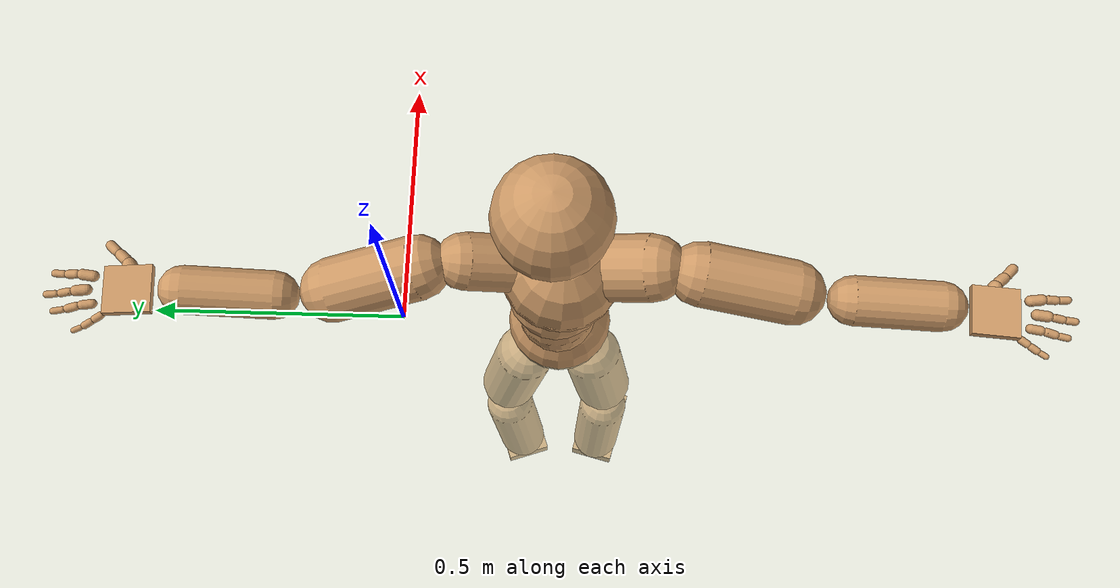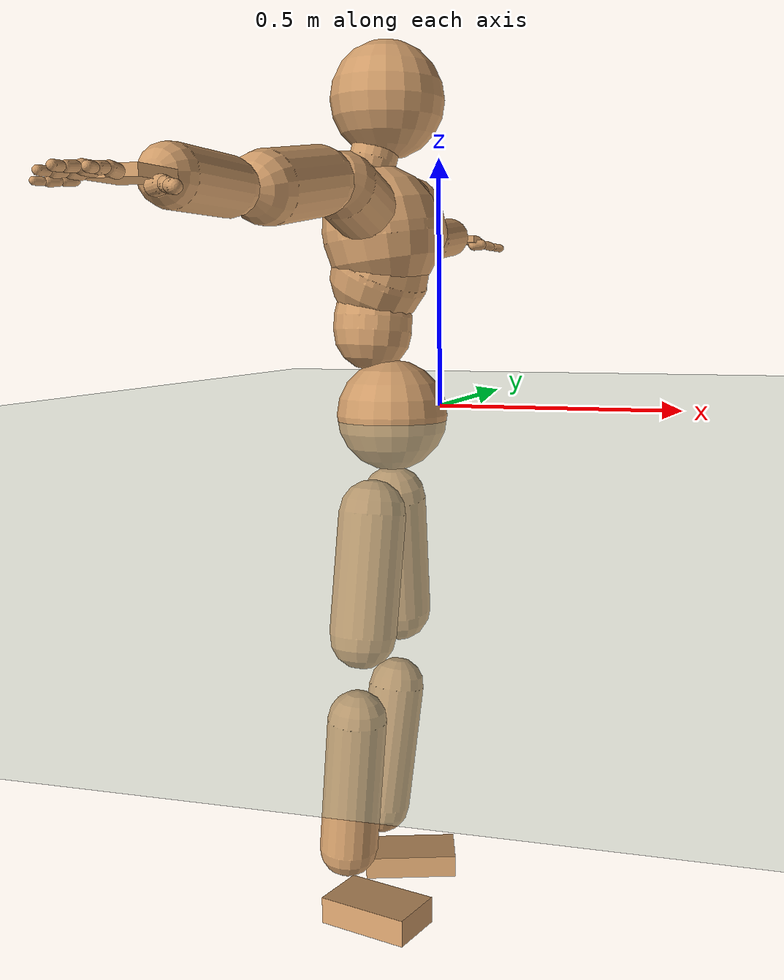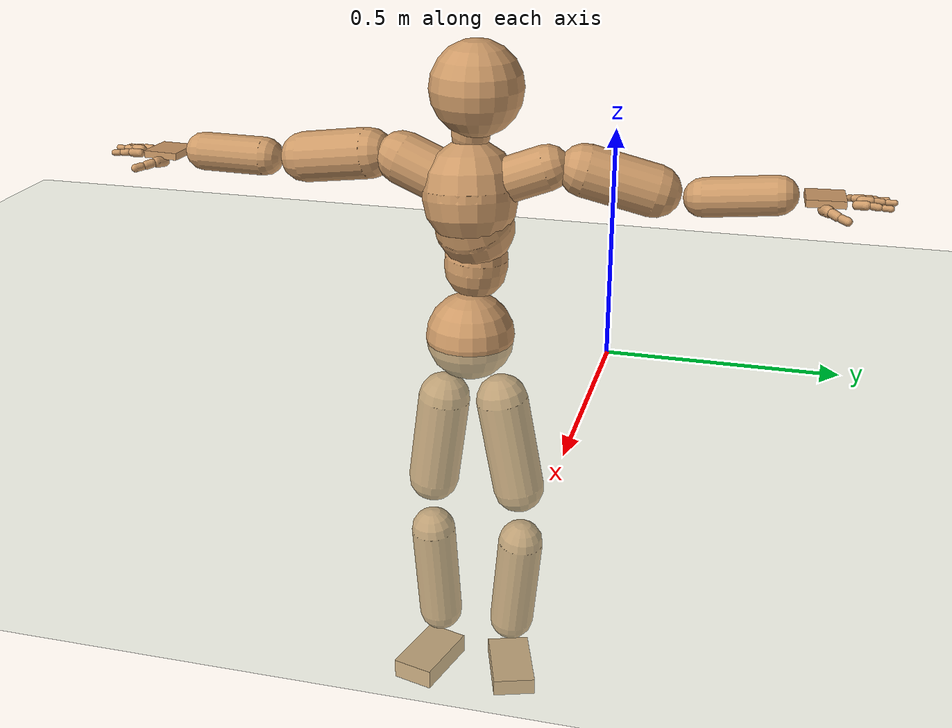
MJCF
<mujoco model="humanoid">
  <compiler coordinate="local" angle="radian"/>
  <default>
    <joint damping="0.0" armature="0.01" stiffness="0.0" limited="true"/>
    <geom conaffinity="1" condim="3" contype="7" margin="0.001" rgba="0.8 0.6 .4 1"/>
  </default>
  <asset>
    <texture type="skybox" builtin="gradient" rgb1=".4 .5 .6" rgb2="0 0 0" width="100" height="100"/>
    <texture builtin="flat" height="1278" mark="cross" markrgb="1 1 1" name="texgeom" random="0.01" rgb1="0.8 0.6 0.4" rgb2="0.8 0.6 0.4" type="cube" width="127"/>
    <texture builtin="checker" height="100" name="texplane" rgb1="0 0 0" rgb2="0.8 0.8 0.8" type="2d" width="100"/>
    <material name="MatPlane" reflectance="0.5" shininess="1" specular="1" texrepeat="60 60" texture="texplane"/>
    <material name="geom" texture="texgeom" texuniform="true"/>
  </asset>
  <worldbody>
    <light cutoff="100" diffuse="1 1 1" dir="-0 0 -1.3" directional="true" exponent="1" pos="0 0 1.3" specular=".1 .1 .1"/>
    <geom conaffinity="1" condim="3" name="floor" pos="0 0 0" rgba="0.8 0.9 0.8 1" size="100 100 .2" type="plane" material="MatPlane"/>
    <body name="Pelvis" pos="0.0013 -0.3128 0.0079">
      <freejoint name="Pelvis"/>
      <geom type="sphere" contype="1" conaffinity="1" density="500" size="0.1012" pos="0.0000 0.0000 0.0000" name="Pelvis"/>
      <body name="L_Hip" pos="-0.021 0.056 -0.0881">
        <joint name="L_Hip_x" type="hinge" pos="0 0 0" axis="1 0 0" stiffness="800" damping="80" armature="0.02" range="-180.0000 180.0000"/>
        <joint name="L_Hip_y" type="hinge" pos="0 0 0" axis="0 1 0" stiffness="800" damping="80" armature="0.02" range="-180.0000 180.0000"/>
        <joint name="L_Hip_z" type="hinge" pos="0 0 0" axis="0 0 1" stiffness="800" damping="80" armature="0.02" range="-180.0000 180.0000"/>
        <geom type="capsule" contype="1" conaffinity="1" density="500" fromto="-0.0015 0.0138 -0.0769 -0.0062 0.0551 -0.3075" size="0.0609" name="L_Hip"/>
        <body name="L_Knee" pos="-0.0077 0.0688 -0.3844">
          <joint name="L_Knee_x" type="hinge" pos="0 0 0" axis="1 0 0" stiffness="800" damping="80" armature="0.02" range="-180.0000 180.0000"/>
          <joint name="L_Knee_y" type="hinge" pos="0 0 0" axis="0 1 0" stiffness="800" damping="80" armature="0.02" range="-180.0000 180.0000"/>
          <joint name="L_Knee_z" type="hinge" pos="0 0 0" axis="0 0 1" stiffness="800" damping="80" armature="0.02" range="-180.0000 180.0000"/>
          <geom type="capsule" contype="1" conaffinity="1" density="500" fromto="-0.0080 -0.0087 -0.0818 -0.0321 -0.0348 -0.3274" size="0.0545" name="L_Knee"/>
          <body name="L_Ankle" pos="-0.0401 -0.0434 -0.4092">
            <joint name="L_Ankle_x" type="hinge" pos="0 0 0" axis="1 0 0" stiffness="800" damping="80" armature="0.02" range="-180.0000 180.0000"/>
            <joint name="L_Ankle_y" type="hinge" pos="0 0 0" axis="0 1 0" stiffness="800" damping="80" armature="0.02" range="-180.0000 180.0000"/>
            <joint name="L_Ankle_z" type="hinge" pos="0 0 0" axis="0 0 1" stiffness="800" damping="80" armature="0.02" range="-180.0000 180.0000"/>
            <geom type="box" contype="1" conaffinity="1" density="500" pos="0.0637 0.0213 -0.0289" size="0.0886 0.0512 0.0208" quat="0.9870 0.0000 0.0000 0.1607" name="L_Ankle"/>
            <body name="L_Toe" pos="0.1274 0.0426 -0.0577">
              <joint name="L_Toe_x" type="hinge" pos="0 0 0" axis="1 0 0" stiffness="500" damping="50" armature="0.02" range="-180.0000 180.0000"/>
              <joint name="L_Toe_y" type="hinge" pos="0 0 0" axis="0 1 0" stiffness="500" damping="50" armature="0.02" range="-180.0000 180.0000"/>
              <joint name="L_Toe_z" type="hinge" pos="0 0 0" axis="0 0 1" stiffness="500" damping="50" armature="0.02" range="-180.0000 180.0000"/>
              <geom type="box" contype="1" conaffinity="1" density="500" pos="0.0000 0.0000 0.0295" size="0.001 0.0025 0.0011" quat="0.9863 0.0000 0.0000 0.1652" name="L_Toe"/>
            </body>
          </body>
        </body>
      </body>
      <body name="R_Hip" pos="-0.0132 -0.0579 -0.0984">
        <joint name="R_Hip_x" type="hinge" pos="0 0 0" axis="1 0 0" stiffness="800" damping="80" armature="0.02" range="-180.0000 180.0000"/>
        <joint name="R_Hip_y" type="hinge" pos="0 0 0" axis="0 1 0" stiffness="800" damping="80" armature="0.02" range="-180.0000 180.0000"/>
        <joint name="R_Hip_z" type="hinge" pos="0 0 0" axis="0 0 1" stiffness="800" damping="80" armature="0.02" range="-180.0000 180.0000"/>
        <geom type="capsule" contype="1" conaffinity="1" density="500" fromto="-0.0032 -0.0105 -0.0736 -0.0129 -0.0419 -0.2946" size="0.0608" name="R_Hip"/>
        <body name="R_Knee" pos="-0.0161 -0.0524 -0.3682">
          <joint name="R_Knee_x" type="hinge" pos="0 0 0" axis="1 0 0" stiffness="800" damping="80" armature="0.02" range="-180.0000 180.0000"/>
          <joint name="R_Knee_y" type="hinge" pos="0 0 0" axis="0 1 0" stiffness="800" damping="80" armature="0.02" range="-180.0000 180.0000"/>
          <joint name="R_Knee_z" type="hinge" pos="0 0 0" axis="0 0 1" stiffness="800" damping="80" armature="0.02" range="-180.0000 180.0000"/>
          <geom type="capsule" contype="1" conaffinity="1" density="500" fromto="-0.0079 0.0031 -0.0844 -0.0317 0.0125 -0.3377" size="0.0544" name="R_Knee"/>
          <body name="R_Ankle" pos="-0.0396 0.0157 -0.4221">
            <joint name="R_Ankle_x" type="hinge" pos="0 0 0" axis="1 0 0" stiffness="800" damping="80" armature="0.02" range="-180.0000 180.0000"/>
            <joint name="R_Ankle_y" type="hinge" pos="0 0 0" axis="0 1 0" stiffness="800" damping="80" armature="0.02" range="-180.0000 180.0000"/>
            <joint name="R_Ankle_z" type="hinge" pos="0 0 0" axis="0 0 1" stiffness="800" damping="80" armature="0.02" range="-180.0000 180.0000"/>
            <geom type="box" contype="1" conaffinity="1" density="500" pos="0.0671 -0.0173 -0.0283" size="0.0886 0.0512 0.0249" quat="0.9920 0.0000 0.0000 -0.1261" name="R_Ankle"/>
            <body name="R_Toe" pos="0.1342 -0.0347 -0.0567">
              <joint name="R_Toe_x" type="hinge" pos="0 0 0" axis="1 0 0" stiffness="500" damping="50" armature="0.02" range="-180.0000 180.0000"/>
              <joint name="R_Toe_y" type="hinge" pos="0 0 0" axis="0 1 0" stiffness="500" damping="50" armature="0.02" range="-180.0000 180.0000"/>
              <joint name="R_Toe_z" type="hinge" pos="0 0 0" axis="0 0 1" stiffness="500" damping="50" armature="0.02" range="-180.0000 180.0000"/>
              <geom type="box" contype="1" conaffinity="1" density="500" pos="0.0000 0.0000 0.0249" size="0.001 0.0025 0.0011" quat="0.9931 0.0000 0.0000 -0.1174" name="R_Toe"/>
            </body>
          </body>
        </body>
      </body>
      <body name="Torso" pos="-0.0388 -0.0004 0.0996">
        <joint name="Torso_x" type="hinge" pos="0 0 0" axis="1 0 0" stiffness="1000" damping="100" armature="0.02" range="-180.0000 180.0000"/>
        <joint name="Torso_y" type="hinge" pos="0 0 0" axis="0 1 0" stiffness="1000" damping="100" armature="0.02" range="-180.0000 180.0000"/>
        <joint name="Torso_z" type="hinge" pos="0 0 0" axis="0 0 1" stiffness="1000" damping="100" armature="0.02" range="-180.0000 180.0000"/>
        <geom type="capsule" contype="1" conaffinity="1" density="500" fromto="0.0025 0.0057 0.0782 0.0017 0.0038 0.0522" size="0.0717" name="Torso"/>
        <body name="Spine" pos="0.0042 0.0094 0.1304">
          <joint name="Spine_x" type="hinge" pos="0 0 0" axis="1 0 0" stiffness="1000" damping="100" armature="0.02" range="-180.0000 180.0000"/>
          <joint name="Spine_y" type="hinge" pos="0 0 0" axis="0 1 0" stiffness="1000" damping="100" armature="0.02" range="-180.0000 180.0000"/>
          <joint name="Spine_z" type="hinge" pos="0 0 0" axis="0 0 1" stiffness="1000" damping="100" armature="0.02" range="-180.0000 180.0000"/>
          <geom type="capsule" contype="1" conaffinity="1" density="500" fromto="0.0153 -0.0053 0.0314 0.0102 -0.0035 0.0209" size="0.0894" name="Spine"/>
          <body name="Chest" pos="0.0255 -0.0088 0.0523">
            <joint name="Chest_x" type="hinge" pos="0 0 0" axis="1 0 0" stiffness="1000" damping="100" armature="0.02" range="-180.0000 180.0000"/>
            <joint name="Chest_y" type="hinge" pos="0 0 0" axis="0 1 0" stiffness="1000" damping="100" armature="0.02" range="-180.0000 180.0000"/>
            <joint name="Chest_z" type="hinge" pos="0 0 0" axis="0 0 1" stiffness="1000" damping="100" armature="0.02" range="-180.0000 180.0000"/>
            <geom type="capsule" contype="1" conaffinity="1" density="500" fromto="-0.0072 -0.0030 0.0565 -0.0048 -0.0020 0.0377" size="0.107" name="Chest"/>
            <body name="Neck" pos="-0.0259 -0.0105 0.145">
              <joint name="Neck_x" type="hinge" pos="0 0 0" axis="1 0 0" stiffness="500" damping="50" armature="0.02" range="-180.0000 180.0000"/>
              <joint name="Neck_y" type="hinge" pos="0 0 0" axis="0 1 0" stiffness="500" damping="50" armature="0.02" range="-180.0000 180.0000"/>
              <joint name="Neck_z" type="hinge" pos="0 0 0" axis="0 0 1" stiffness="500" damping="50" armature="0.02" range="-180.0000 180.0000"/>
              <geom type="capsule" contype="1" conaffinity="1" density="500" fromto="0.0055 0.0047 0.0264 0.0219 0.0190 0.1055" size="0.0425" name="Neck"/>
              <body name="Head" pos="0.0274 0.0237 0.1319">
                <joint name="Head_x" type="hinge" pos="0 0 0" axis="1 0 0" stiffness="500" damping="50" armature="0.02" range="-180.0000 180.0000"/>
                <joint name="Head_y" type="hinge" pos="0 0 0" axis="0 1 0" stiffness="500" damping="50" armature="0.02" range="-180.0000 180.0000"/>
                <joint name="Head_z" type="hinge" pos="0 0 0" axis="0 0 1" stiffness="500" damping="50" armature="0.02" range="-180.0000 180.0000"/>
                <geom type="sphere" contype="1" conaffinity="1" density="500" size="0.1022" pos="0.0000 0.0000 0.0000" name="Head"/>
              </body>
            </body>
            <body name="L_Thorax" pos="-0.0034 0.0444 0.0685">
              <joint name="L_Thorax_x" type="hinge" pos="0 0 0" axis="1 0 0" stiffness="500" damping="50" armature="0.02" range="-180.0000 180.0000"/>
              <joint name="L_Thorax_y" type="hinge" pos="0 0 0" axis="0 1 0" stiffness="500" damping="50" armature="0.02" range="-180.0000 180.0000"/>
              <joint name="L_Thorax_z" type="hinge" pos="0 0 0" axis="0 0 1" stiffness="500" damping="50" armature="0.02" range="-180.0000 180.0000"/>
              <geom type="capsule" contype="1" conaffinity="1" density="500" fromto="-0.0030 0.0298 0.0109 -0.0121 0.1192 0.0435" size="0.0505" name="L_Thorax"/>
              <body name="L_Shoulder" pos="-0.0151 0.1489 0.0544">
                <joint name="L_Shoulder_x" type="hinge" pos="0 0 0" axis="1 0 0" stiffness="500" damping="50" armature="0.02" range="-180.0000 180.0000"/>
                <joint name="L_Shoulder_y" type="hinge" pos="0 0 0" axis="0 1 0" stiffness="500" damping="50" armature="0.02" range="-180.0000 180.0000"/>
                <joint name="L_Shoulder_z" type="hinge" pos="0 0 0" axis="0 0 1" stiffness="500" damping="50" armature="0.02" range="-180.0000 180.0000"/>
                <geom type="capsule" contype="1" conaffinity="1" density="500" fromto="-0.0098 0.0495 -0.0143 -0.0391 0.1979 -0.0573" size="0.0575" name="L_Shoulder"/>
                <body name="L_Elbow" pos="-0.0488 0.2473 -0.0716">
                  <joint name="L_Elbow_x" type="hinge" pos="0 0 0" axis="1 0 0" stiffness="500" damping="50" armature="0.02" range="-720.0000 720.0000"/>
                  <joint name="L_Elbow_y" type="hinge" pos="0 0 0" axis="0 1 0" stiffness="500" damping="50" armature="0.02" range="-720.0000 720.0000"/>
                  <joint name="L_Elbow_z" type="hinge" pos="0 0 0" axis="0 0 1" stiffness="500" damping="50" armature="0.02" range="-720.0000 720.0000"/>
                  <geom type="capsule" contype="1" conaffinity="1" density="500" fromto="0.0000 0.0520 0.0053 0.0000 0.2082 0.0212" size="0.0426" name="L_Elbow"/>
                  <body name="L_Wrist" pos="0 0.2602 0.0265">
                    <joint name="L_Wrist_x" type="hinge" pos="0 0 0" axis="1 0 0" stiffness="300" damping="30" armature="0.02" range="-180.0000 180.0000"/>
                    <joint name="L_Wrist_y" type="hinge" pos="0 0 0" axis="0 1 0" stiffness="300" damping="30" armature="0.02" range="-180.0000 180.0000"/>
                    <joint name="L_Wrist_z" type="hinge" pos="0 0 0" axis="0 0 1" stiffness="300" damping="30" armature="0.02" range="-180.0000 180.0000"/>
                    <geom type="box" contype="1" conaffinity="1" density="500" pos="-0.0029 0.0427 -0.0057" size="0.0415 0.0427 0.008" quat="0.7304 0.0000 0.0000 -0.6830" name="L_Wrist"/>
                    <body name="L_Index1" pos="0.0205 0.1001 -0.0081">
                      <joint name="L_Index1_x" type="hinge" pos="0 0 0" axis="1 0 0" stiffness="100" damping="10" armature="0.02" range="-180.0000 180.0000"/>
                      <joint name="L_Index1_y" type="hinge" pos="0 0 0" axis="0 1 0" stiffness="100" damping="10" armature="0.02" range="-180.0000 180.0000"/>
                      <joint name="L_Index1_z" type="hinge" pos="0 0 0" axis="0 0 1" stiffness="100" damping="10" armature="0.02" range="-180.0000 180.0000"/>
                      <geom type="capsule" contype="1" conaffinity="1" density="500" fromto="0.0007 0.0064 0.0003 0.0028 0.0257 0.0013" size="0.0096" name="L_Index1"/>
                      <body name="L_Index2" pos="0.0035 0.0322 0.0016">
                        <joint name="L_Index2_x" type="hinge" pos="0 0 0" axis="1 0 0" stiffness="100" damping="10" armature="0.02" range="-180.0000 180.0000"/>
                        <joint name="L_Index2_y" type="hinge" pos="0 0 0" axis="0 1 0" stiffness="100" damping="10" armature="0.02" range="-180.0000 180.0000"/>
                        <joint name="L_Index2_z" type="hinge" pos="0 0 0" axis="0 0 1" stiffness="100" damping="10" armature="0.02" range="-180.0000 180.0000"/>
                        <geom type="capsule" contype="1" conaffinity="1" density="500" fromto="-0.0001 0.0045 -0.0005 -0.0003 0.0182 -0.0021" size="0.0078" name="L_Index2"/>
                        <body name="L_Index3" pos="-0.0003 0.0227 -0.0027">
                          <joint name="L_Index3_x" type="hinge" pos="0 0 0" axis="1 0 0" stiffness="100" damping="10" armature="0.02" range="-180.0000 180.0000"/>
                          <joint name="L_Index3_y" type="hinge" pos="0 0 0" axis="0 1 0" stiffness="100" damping="10" armature="0.02" range="-180.0000 180.0000"/>
                          <joint name="L_Index3_z" type="hinge" pos="0 0 0" axis="0 0 1" stiffness="100" damping="10" armature="0.02" range="-180.0000 180.0000"/>
                          <geom type="capsule" contype="1" conaffinity="1" density="500" fromto="0.0003 0.0049 -0.0001 0.0013 0.0198 -0.0005" size="0.0066" name="L_Index3"/>
                        </body>
                      </body>
                    </body>
                    <body name="L_Middle1" pos="-0.0036 0.1081 -0.0056">
                      <joint name="L_Middle1_x" type="hinge" pos="0 0 0" axis="1 0 0" stiffness="100" damping="10" armature="0.02" range="-180.0000 180.0000"/>
                      <joint name="L_Middle1_y" type="hinge" pos="0 0 0" axis="0 1 0" stiffness="100" damping="10" armature="0.02" range="-180.0000 180.0000"/>
                      <joint name="L_Middle1_z" type="hinge" pos="0 0 0" axis="0 0 1" stiffness="100" damping="10" armature="0.02" range="-180.0000 180.0000"/>
                      <geom type="capsule" contype="1" conaffinity="1" density="500" fromto="-0.0009 0.0062 0.0001 -0.0034 0.0247 0.0004" size="0.0096" name="L_Middle1"/>
                      <body name="L_Middle2" pos="-0.0043 0.0309 0.0005">
                        <joint name="L_Middle2_x" type="hinge" pos="0 0 0" axis="1 0 0" stiffness="100" damping="10" armature="0.02" range="-180.0000 180.0000"/>
                        <joint name="L_Middle2_y" type="hinge" pos="0 0 0" axis="0 1 0" stiffness="100" damping="10" armature="0.02" range="-180.0000 180.0000"/>
                        <joint name="L_Middle2_z" type="hinge" pos="0 0 0" axis="0 0 1" stiffness="100" damping="10" armature="0.02" range="-180.0000 180.0000"/>
                        <geom type="capsule" contype="1" conaffinity="1" density="500" fromto="-0.0009 0.0047 -0.0005 -0.0035 0.0188 -0.0020" size="0.0071" name="L_Middle2"/>
                        <body name="L_Middle3" pos="-0.0043 0.0235 -0.0025">
                          <joint name="L_Middle3_x" type="hinge" pos="0 0 0" axis="1 0 0" stiffness="100" damping="10" armature="0.02" range="-180.0000 180.0000"/>
                          <joint name="L_Middle3_y" type="hinge" pos="0 0 0" axis="0 1 0" stiffness="100" damping="10" armature="0.02" range="-180.0000 180.0000"/>
                          <joint name="L_Middle3_z" type="hinge" pos="0 0 0" axis="0 0 1" stiffness="100" damping="10" armature="0.02" range="-180.0000 180.0000"/>
                          <geom type="capsule" contype="1" conaffinity="1" density="500" fromto="-0.0005 0.0051 -0.0001 -0.0019 0.0204 -0.0004" size="0.0063" name="L_Middle3"/>
                        </body>
                      </body>
                    </body>
                    <body name="L_Pinky1" pos="-0.0447 0.0833 -0.0144">
                      <joint name="L_Pinky1_x" type="hinge" pos="0 0 0" axis="1 0 0" stiffness="100" damping="10" armature="0.02" range="-180.0000 180.0000"/>
                      <joint name="L_Pinky1_y" type="hinge" pos="0 0 0" axis="0 1 0" stiffness="100" damping="10" armature="0.02" range="-180.0000 180.0000"/>
                      <joint name="L_Pinky1_z" type="hinge" pos="0 0 0" axis="0 0 1" stiffness="100" damping="10" armature="0.02" range="-180.0000 180.0000"/>
                      <geom type="capsule" contype="1" conaffinity="1" density="500" fromto="-0.0024 0.0033 -0.0003 -0.0094 0.0133 -0.0013" size="0.0069" name="L_Pinky1"/>
                      <body name="L_Pinky2" pos="-0.0118 0.0166 -0.0017">
                        <joint name="L_Pinky2_x" type="hinge" pos="0 0 0" axis="1 0 0" stiffness="100" damping="10" armature="0.02" range="-180.0000 180.0000"/>
                        <joint name="L_Pinky2_y" type="hinge" pos="0 0 0" axis="0 1 0" stiffness="100" damping="10" armature="0.02" range="-180.0000 180.0000"/>
                        <joint name="L_Pinky2_z" type="hinge" pos="0 0 0" axis="0 0 1" stiffness="100" damping="10" armature="0.02" range="-180.0000 180.0000"/>
                        <geom type="capsule" contype="1" conaffinity="1" density="500" fromto="-0.0022 0.0033 -0.0004 -0.0087 0.0130 -0.0016" size="0.0066" name="L_Pinky2"/>
                        <body name="L_Pinky3" pos="-0.0109 0.0163 -0.002">
                          <joint name="L_Pinky3_x" type="hinge" pos="0 0 0" axis="1 0 0" stiffness="100" damping="10" armature="0.02" range="-180.0000 180.0000"/>
                          <joint name="L_Pinky3_y" type="hinge" pos="0 0 0" axis="0 1 0" stiffness="100" damping="10" armature="0.02" range="-180.0000 180.0000"/>
                          <joint name="L_Pinky3_z" type="hinge" pos="0 0 0" axis="0 0 1" stiffness="100" damping="10" armature="0.02" range="-180.0000 180.0000"/>
                          <geom type="capsule" contype="1" conaffinity="1" density="500" fromto="-0.0018 0.0037 0.0000 -0.0071 0.0146 0.0000" size="0.005" name="L_Pinky3"/>
                        </body>
                      </body>
                    </body>
                    <body name="L_Ring1" pos="-0.0277 0.0964 -0.0089">
                      <joint name="L_Ring1_x" type="hinge" pos="0 0 0" axis="1 0 0" stiffness="100" damping="10" armature="0.02" range="-180.0000 180.0000"/>
                      <joint name="L_Ring1_y" type="hinge" pos="0 0 0" axis="0 1 0" stiffness="100" damping="10" armature="0.02" range="-180.0000 180.0000"/>
                      <joint name="L_Ring1_z" type="hinge" pos="0 0 0" axis="0 0 1" stiffness="100" damping="10" armature="0.02" range="-180.0000 180.0000"/>
                      <geom type="capsule" contype="1" conaffinity="1" density="500" fromto="-0.0010 0.0057 0.0001 -0.0039 0.0229 0.0003" size="0.0082" name="L_Ring1"/>
                      <body name="L_Ring2" pos="-0.0049 0.0286 0.0004">
                        <joint name="L_Ring2_x" type="hinge" pos="0 0 0" axis="1 0 0" stiffness="100" damping="10" armature="0.02" range="-180.0000 180.0000"/>
                        <joint name="L_Ring2_y" type="hinge" pos="0 0 0" axis="0 1 0" stiffness="100" damping="10" armature="0.02" range="-180.0000 180.0000"/>
                        <joint name="L_Ring2_z" type="hinge" pos="0 0 0" axis="0 0 1" stiffness="100" damping="10" armature="0.02" range="-180.0000 180.0000"/>
                        <geom type="capsule" contype="1" conaffinity="1" density="500" fromto="-0.0013 0.0046 -0.0005 -0.0053 0.0186 -0.0019" size="0.0076" name="L_Ring2"/>
                        <body name="L_Ring3" pos="-0.0066 0.0232 -0.0024">
                          <joint name="L_Ring3_x" type="hinge" pos="0 0 0" axis="1 0 0" stiffness="100" damping="10" armature="0.02" range="-180.0000 180.0000"/>
                          <joint name="L_Ring3_y" type="hinge" pos="0 0 0" axis="0 1 0" stiffness="100" damping="10" armature="0.02" range="-180.0000 180.0000"/>
                          <joint name="L_Ring3_z" type="hinge" pos="0 0 0" axis="0 0 1" stiffness="100" damping="10" armature="0.02" range="-180.0000 180.0000"/>
                          <geom type="capsule" contype="1" conaffinity="1" density="500" fromto="-0.0009 0.0050 -0.0001 -0.0037 0.0202 -0.0003" size="0.0059" name="L_Ring3"/>
                        </body>
                      </body>
                    </body>
                    <body name="L_Thumb1" pos="0.0269 0.0387 -0.0196">
                      <joint name="L_Thumb1_x" type="hinge" pos="0 0 0" axis="1 0 0" stiffness="100" damping="10" armature="0.02" range="-180.0000 180.0000"/>
                      <joint name="L_Thumb1_y" type="hinge" pos="0 0 0" axis="0 1 0" stiffness="100" damping="10" armature="0.02" range="-180.0000 180.0000"/>
                      <joint name="L_Thumb1_z" type="hinge" pos="0 0 0" axis="0 0 1" stiffness="100" damping="10" armature="0.02" range="-180.0000 180.0000"/>
                      <geom type="capsule" contype="1" conaffinity="1" density="500" fromto="0.0053 0.0032 0.0004 0.0212 0.0128 0.0017" size="0.0125" name="L_Thumb1"/>
                      <body name="L_Thumb2" pos="0.0265 0.0159 0.0021">
                        <joint name="L_Thumb2_x" type="hinge" pos="0 0 0" axis="1 0 0" stiffness="100" damping="10" armature="0.02" range="-180.0000 180.0000"/>
                        <joint name="L_Thumb2_y" type="hinge" pos="0 0 0" axis="0 1 0" stiffness="100" damping="10" armature="0.02" range="-180.0000 180.0000"/>
                        <joint name="L_Thumb2_z" type="hinge" pos="0 0 0" axis="0 0 1" stiffness="100" damping="10" armature="0.02" range="-180.0000 180.0000"/>
                        <geom type="capsule" contype="1" conaffinity="1" density="500" fromto="0.0033 0.0039 -0.0010 0.0133 0.0155 -0.0040" size="0.01" name="L_Thumb2"/>
                        <body name="L_Thumb3" pos="0.0166 0.0194 -0.005">
                          <joint name="L_Thumb3_x" type="hinge" pos="0 0 0" axis="1 0 0" stiffness="100" damping="10" armature="0.02" range="-180.0000 180.0000"/>
                          <joint name="L_Thumb3_y" type="hinge" pos="0 0 0" axis="0 1 0" stiffness="100" damping="10" armature="0.02" range="-180.0000 180.0000"/>
                          <joint name="L_Thumb3_z" type="hinge" pos="0 0 0" axis="0 0 1" stiffness="100" damping="10" armature="0.02" range="-180.0000 180.0000"/>
                          <geom type="capsule" contype="1" conaffinity="1" density="500" fromto="0.0037 0.0043 -0.0006 0.0149 0.0171 -0.0024" size="0.009" name="L_Thumb3"/>
                        </body>
                      </body>
                    </body>
                  </body>
                </body>
              </body>
            </body>
            <body name="R_Thorax" pos="-0.0067 -0.0488 0.0691">
              <joint name="R_Thorax_x" type="hinge" pos="0 0 0" axis="1 0 0" stiffness="500" damping="50" armature="0.02" range="-180.0000 180.0000"/>
              <joint name="R_Thorax_y" type="hinge" pos="0 0 0" axis="0 1 0" stiffness="500" damping="50" armature="0.02" range="-180.0000 180.0000"/>
              <joint name="R_Thorax_z" type="hinge" pos="0 0 0" axis="0 0 1" stiffness="500" damping="50" armature="0.02" range="-180.0000 180.0000"/>
              <geom type="capsule" contype="1" conaffinity="1" density="500" fromto="-0.0030 -0.0275 0.0106 -0.0118 -0.1102 0.0423" size="0.0592" name="R_Thorax"/>
              <body name="R_Shoulder" pos="-0.0148 -0.1377 0.0529">
                <joint name="R_Shoulder_x" type="hinge" pos="0 0 0" axis="1 0 0" stiffness="500" damping="50" armature="0.02" range="-180.0000 180.0000"/>
                <joint name="R_Shoulder_y" type="hinge" pos="0 0 0" axis="0 1 0" stiffness="500" damping="50" armature="0.02" range="-180.0000 180.0000"/>
                <joint name="R_Shoulder_z" type="hinge" pos="0 0 0" axis="0 0 1" stiffness="500" damping="50" armature="0.02" range="-180.0000 180.0000"/>
                <geom type="capsule" contype="1" conaffinity="1" density="500" fromto="-0.0067 -0.0530 -0.0082 -0.0269 -0.2118 -0.0329" size="0.0568" name="R_Shoulder"/>
                <body name="R_Elbow" pos="-0.0336 -0.2648 -0.0411">
                  <joint name="R_Elbow_x" type="hinge" pos="0 0 0" axis="1 0 0" stiffness="500" damping="50" armature="0.02" range="-720.0000 720.0000"/>
                  <joint name="R_Elbow_y" type="hinge" pos="0 0 0" axis="0 1 0" stiffness="500" damping="50" armature="0.02" range="-720.0000 720.0000"/>
                  <joint name="R_Elbow_z" type="hinge" pos="0 0 0" axis="0 0 1" stiffness="500" damping="50" armature="0.02" range="-720.0000 720.0000"/>
                  <geom type="capsule" contype="1" conaffinity="1" density="500" fromto="-0.0022 -0.0506 0.0001 -0.0090 -0.2024 0.0004" size="0.0436" name="R_Elbow"/>
                  <body name="R_Wrist" pos="-0.0112 -0.253 0.0005">
                    <joint name="R_Wrist_x" type="hinge" pos="0 0 0" axis="1 0 0" stiffness="300" damping="30" armature="0.02" range="-180.0000 180.0000"/>
                    <joint name="R_Wrist_y" type="hinge" pos="0 0 0" axis="0 1 0" stiffness="300" damping="30" armature="0.02" range="-180.0000 180.0000"/>
                    <joint name="R_Wrist_z" type="hinge" pos="0 0 0" axis="0 0 1" stiffness="300" damping="30" armature="0.02" range="-180.0000 180.0000"/>
                    <geom type="box" contype="1" conaffinity="1" density="500" pos="-0.0034 -0.0425 -0.0074" size="0.0415 0.0438 0.0081" quat="0.7345 0.0000 0.0000 0.6786" name="R_Wrist"/>
                    <body name="R_Index1" pos="0.0195 -0.0997 -0.0116">
                      <joint name="R_Index1_x" type="hinge" pos="0 0 0" axis="1 0 0" stiffness="100" damping="10" armature="0.02" range="-180.0000 180.0000"/>
                      <joint name="R_Index1_y" type="hinge" pos="0 0 0" axis="0 1 0" stiffness="100" damping="10" armature="0.02" range="-180.0000 180.0000"/>
                      <joint name="R_Index1_z" type="hinge" pos="0 0 0" axis="0 0 1" stiffness="100" damping="10" armature="0.02" range="-180.0000 180.0000"/>
                      <geom type="capsule" contype="1" conaffinity="1" density="500" fromto="0.0007 -0.0064 0.0003 0.0028 -0.0257 0.0013" size="0.0096" name="R_Index1"/>
                      <body name="R_Index2" pos="0.0035 -0.0322 0.0016">
                        <joint name="R_Index2_x" type="hinge" pos="0 0 0" axis="1 0 0" stiffness="100" damping="10" armature="0.02" range="-180.0000 180.0000"/>
                        <joint name="R_Index2_y" type="hinge" pos="0 0 0" axis="0 1 0" stiffness="100" damping="10" armature="0.02" range="-180.0000 180.0000"/>
                        <joint name="R_Index2_z" type="hinge" pos="0 0 0" axis="0 0 1" stiffness="100" damping="10" armature="0.02" range="-180.0000 180.0000"/>
                        <geom type="capsule" contype="1" conaffinity="1" density="500" fromto="-0.0001 -0.0045 -0.0005 -0.0003 -0.0182 -0.0021" size="0.0078" name="R_Index2"/>
                        <body name="R_Index3" pos="-0.0003 -0.0227 -0.0027">
                          <joint name="R_Index3_x" type="hinge" pos="0 0 0" axis="1 0 0" stiffness="100" damping="10" armature="0.02" range="-180.0000 180.0000"/>
                          <joint name="R_Index3_y" type="hinge" pos="0 0 0" axis="0 1 0" stiffness="100" damping="10" armature="0.02" range="-180.0000 180.0000"/>
                          <joint name="R_Index3_z" type="hinge" pos="0 0 0" axis="0 0 1" stiffness="100" damping="10" armature="0.02" range="-180.0000 180.0000"/>
                          <geom type="capsule" contype="1" conaffinity="1" density="500" fromto="0.0003 -0.0041 -0.0001 0.0013 -0.0166 -0.0005" size="0.0069" name="R_Index3"/>
                        </body>
                      </body>
                    </body>
                    <body name="R_Middle1" pos="-0.0046 -0.1077 -0.0091">
                      <joint name="R_Middle1_x" type="hinge" pos="0 0 0" axis="1 0 0" stiffness="100" damping="10" armature="0.02" range="-180.0000 180.0000"/>
                      <joint name="R_Middle1_y" type="hinge" pos="0 0 0" axis="0 1 0" stiffness="100" damping="10" armature="0.02" range="-180.0000 180.0000"/>
                      <joint name="R_Middle1_z" type="hinge" pos="0 0 0" axis="0 0 1" stiffness="100" damping="10" armature="0.02" range="-180.0000 180.0000"/>
                      <geom type="capsule" contype="1" conaffinity="1" density="500" fromto="-0.0009 -0.0062 0.0001 -0.0034 -0.0247 0.0004" size="0.0096" name="R_Middle1"/>
                      <body name="R_Middle2" pos="-0.0043 -0.0309 0.0005">
                        <joint name="R_Middle2_x" type="hinge" pos="0 0 0" axis="1 0 0" stiffness="100" damping="10" armature="0.02" range="-180.0000 180.0000"/>
                        <joint name="R_Middle2_y" type="hinge" pos="0 0 0" axis="0 1 0" stiffness="100" damping="10" armature="0.02" range="-180.0000 180.0000"/>
                        <joint name="R_Middle2_z" type="hinge" pos="0 0 0" axis="0 0 1" stiffness="100" damping="10" armature="0.02" range="-180.0000 180.0000"/>
                        <geom type="capsule" contype="1" conaffinity="1" density="500" fromto="-0.0009 -0.0047 -0.0005 -0.0035 -0.0188 -0.0020" size="0.0072" name="R_Middle2"/>
                        <body name="R_Middle3" pos="-0.0043 -0.0235 -0.0025">
                          <joint name="R_Middle3_x" type="hinge" pos="0 0 0" axis="1 0 0" stiffness="100" damping="10" armature="0.02" range="-180.0000 180.0000"/>
                          <joint name="R_Middle3_y" type="hinge" pos="0 0 0" axis="0 1 0" stiffness="100" damping="10" armature="0.02" range="-180.0000 180.0000"/>
                          <joint name="R_Middle3_z" type="hinge" pos="0 0 0" axis="0 0 1" stiffness="100" damping="10" armature="0.02" range="-180.0000 180.0000"/>
                          <geom type="capsule" contype="1" conaffinity="1" density="500" fromto="-0.0005 -0.0043 -0.0001 -0.0019 -0.0172 -0.0004" size="0.0066" name="R_Middle3"/>
                        </body>
                      </body>
                    </body>
                    <body name="R_Pinky1" pos="-0.0457 -0.0829 -0.018">
                      <joint name="R_Pinky1_x" type="hinge" pos="0 0 0" axis="1 0 0" stiffness="100" damping="10" armature="0.02" range="-180.0000 180.0000"/>
                      <joint name="R_Pinky1_y" type="hinge" pos="0 0 0" axis="0 1 0" stiffness="100" damping="10" armature="0.02" range="-180.0000 180.0000"/>
                      <joint name="R_Pinky1_z" type="hinge" pos="0 0 0" axis="0 0 1" stiffness="100" damping="10" armature="0.02" range="-180.0000 180.0000"/>
                      <geom type="capsule" contype="1" conaffinity="1" density="500" fromto="-0.0024 -0.0033 -0.0003 -0.0094 -0.0133 -0.0013" size="0.0069" name="R_Pinky1"/>
                      <body name="R_Pinky2" pos="-0.0118 -0.0166 -0.0017">
                        <joint name="R_Pinky2_x" type="hinge" pos="0 0 0" axis="1 0 0" stiffness="100" damping="10" armature="0.02" range="-180.0000 180.0000"/>
                        <joint name="R_Pinky2_y" type="hinge" pos="0 0 0" axis="0 1 0" stiffness="100" damping="10" armature="0.02" range="-180.0000 180.0000"/>
                        <joint name="R_Pinky2_z" type="hinge" pos="0 0 0" axis="0 0 1" stiffness="100" damping="10" armature="0.02" range="-180.0000 180.0000"/>
                        <geom type="capsule" contype="1" conaffinity="1" density="500" fromto="-0.0022 -0.0033 -0.0004 -0.0087 -0.0130 -0.0016" size="0.0066" name="R_Pinky2"/>
                        <body name="R_Pinky3" pos="-0.0109 -0.0163 -0.002">
                          <joint name="R_Pinky3_x" type="hinge" pos="0 0 0" axis="1 0 0" stiffness="100" damping="10" armature="0.02" range="-180.0000 180.0000"/>
                          <joint name="R_Pinky3_y" type="hinge" pos="0 0 0" axis="0 1 0" stiffness="100" damping="10" armature="0.02" range="-180.0000 180.0000"/>
                          <joint name="R_Pinky3_z" type="hinge" pos="0 0 0" axis="0 0 1" stiffness="100" damping="10" armature="0.02" range="-180.0000 180.0000"/>
                          <geom type="capsule" contype="1" conaffinity="1" density="500" fromto="-0.0018 -0.0029 0.0000 -0.0071 -0.0114 0.0000" size="0.0053" name="R_Pinky3"/>
                        </body>
                      </body>
                    </body>
                    <body name="R_Ring1" pos="-0.0287 -0.096 -0.0124">
                      <joint name="R_Ring1_x" type="hinge" pos="0 0 0" axis="1 0 0" stiffness="100" damping="10" armature="0.02" range="-180.0000 180.0000"/>
                      <joint name="R_Ring1_y" type="hinge" pos="0 0 0" axis="0 1 0" stiffness="100" damping="10" armature="0.02" range="-180.0000 180.0000"/>
                      <joint name="R_Ring1_z" type="hinge" pos="0 0 0" axis="0 0 1" stiffness="100" damping="10" armature="0.02" range="-180.0000 180.0000"/>
                      <geom type="capsule" contype="1" conaffinity="1" density="500" fromto="-0.0010 -0.0057 0.0001 -0.0039 -0.0229 0.0003" size="0.0082" name="R_Ring1"/>
                      <body name="R_Ring2" pos="-0.0049 -0.0286 0.0004">
                        <joint name="R_Ring2_x" type="hinge" pos="0 0 0" axis="1 0 0" stiffness="100" damping="10" armature="0.02" range="-180.0000 180.0000"/>
                        <joint name="R_Ring2_y" type="hinge" pos="0 0 0" axis="0 1 0" stiffness="100" damping="10" armature="0.02" range="-180.0000 180.0000"/>
                        <joint name="R_Ring2_z" type="hinge" pos="0 0 0" axis="0 0 1" stiffness="100" damping="10" armature="0.02" range="-180.0000 180.0000"/>
                        <geom type="capsule" contype="1" conaffinity="1" density="500" fromto="-0.0013 -0.0046 -0.0005 -0.0053 -0.0186 -0.0019" size="0.0076" name="R_Ring2"/>
                        <body name="R_Ring3" pos="-0.0066 -0.0232 -0.0024">
                          <joint name="R_Ring3_x" type="hinge" pos="0 0 0" axis="1 0 0" stiffness="100" damping="10" armature="0.02" range="-180.0000 180.0000"/>
                          <joint name="R_Ring3_y" type="hinge" pos="0 0 0" axis="0 1 0" stiffness="100" damping="10" armature="0.02" range="-180.0000 180.0000"/>
                          <joint name="R_Ring3_z" type="hinge" pos="0 0 0" axis="0 0 1" stiffness="100" damping="10" armature="0.02" range="-180.0000 180.0000"/>
                          <geom type="capsule" contype="1" conaffinity="1" density="500" fromto="-0.0009 -0.0042 -0.0001 -0.0037 -0.0170 -0.0003" size="0.0062" name="R_Ring3"/>
                        </body>
                      </body>
                    </body>
                    <body name="R_Thumb1" pos="0.0259 -0.0383 -0.0232">
                      <joint name="R_Thumb1_x" type="hinge" pos="0 0 0" axis="1 0 0" stiffness="100" damping="10" armature="0.02" range="-180.0000 180.0000"/>
                      <joint name="R_Thumb1_y" type="hinge" pos="0 0 0" axis="0 1 0" stiffness="100" damping="10" armature="0.02" range="-180.0000 180.0000"/>
                      <joint name="R_Thumb1_z" type="hinge" pos="0 0 0" axis="0 0 1" stiffness="100" damping="10" armature="0.02" range="-180.0000 180.0000"/>
                      <geom type="capsule" contype="1" conaffinity="1" density="500" fromto="0.0053 -0.0032 0.0004 0.0212 -0.0128 0.0017" size="0.0125" name="R_Thumb1"/>
                      <body name="R_Thumb2" pos="0.0265 -0.0159 0.0021">
                        <joint name="R_Thumb2_x" type="hinge" pos="0 0 0" axis="1 0 0" stiffness="100" damping="10" armature="0.02" range="-180.0000 180.0000"/>
                        <joint name="R_Thumb2_y" type="hinge" pos="0 0 0" axis="0 1 0" stiffness="100" damping="10" armature="0.02" range="-180.0000 180.0000"/>
                        <joint name="R_Thumb2_z" type="hinge" pos="0 0 0" axis="0 0 1" stiffness="100" damping="10" armature="0.02" range="-180.0000 180.0000"/>
                        <geom type="capsule" contype="1" conaffinity="1" density="500" fromto="0.0033 -0.0039 -0.0010 0.0133 -0.0155 -0.0040" size="0.01" name="R_Thumb2"/>
                        <body name="R_Thumb3" pos="0.0166 -0.0194 -0.005">
                          <joint name="R_Thumb3_x" type="hinge" pos="0 0 0" axis="1 0 0" stiffness="100" damping="10" armature="0.02" range="-180.0000 180.0000"/>
                          <joint name="R_Thumb3_y" type="hinge" pos="0 0 0" axis="0 1 0" stiffness="100" damping="10" armature="0.02" range="-180.0000 180.0000"/>
                          <joint name="R_Thumb3_z" type="hinge" pos="0 0 0" axis="0 0 1" stiffness="100" damping="10" armature="0.02" range="-180.0000 180.0000"/>
                          <geom type="capsule" contype="1" conaffinity="1" density="500" fromto="0.0037 -0.0035 -0.0006 0.0149 -0.0139 -0.0024" size="0.0093" name="R_Thumb3"/>
                        </body>
                      </body>
                    </body>
                  </body>
                </body>
              </body>
            </body>
          </body>
        </body>
      </body>
    </body>
  </worldbody>
  <actuator>
    <motor name="L_Hip_x" joint="L_Hip_x" gear="500"/>
    <motor name="L_Hip_y" joint="L_Hip_y" gear="500"/>
    <motor name="L_Hip_z" joint="L_Hip_z" gear="500"/>
    <motor name="L_Knee_x" joint="L_Knee_x" gear="500"/>
    <motor name="L_Knee_y" joint="L_Knee_y" gear="500"/>
    <motor name="L_Knee_z" joint="L_Knee_z" gear="500"/>
    <motor name="L_Ankle_x" joint="L_Ankle_x" gear="500"/>
    <motor name="L_Ankle_y" joint="L_Ankle_y" gear="500"/>
    <motor name="L_Ankle_z" joint="L_Ankle_z" gear="500"/>
    <motor name="L_Toe_x" joint="L_Toe_x" gear="500"/>
    <motor name="L_Toe_y" joint="L_Toe_y" gear="500"/>
    <motor name="L_Toe_z" joint="L_Toe_z" gear="500"/>
    <motor name="R_Hip_x" joint="R_Hip_x" gear="500"/>
    <motor name="R_Hip_y" joint="R_Hip_y" gear="500"/>
    <motor name="R_Hip_z" joint="R_Hip_z" gear="500"/>
    <motor name="R_Knee_x" joint="R_Knee_x" gear="500"/>
    <motor name="R_Knee_y" joint="R_Knee_y" gear="500"/>
    <motor name="R_Knee_z" joint="R_Knee_z" gear="500"/>
    <motor name="R_Ankle_x" joint="R_Ankle_x" gear="500"/>
    <motor name="R_Ankle_y" joint="R_Ankle_y" gear="500"/>
    <motor name="R_Ankle_z" joint="R_Ankle_z" gear="500"/>
    <motor name="R_Toe_x" joint="R_Toe_x" gear="500"/>
    <motor name="R_Toe_y" joint="R_Toe_y" gear="500"/>
    <motor name="R_Toe_z" joint="R_Toe_z" gear="500"/>
    <motor name="Torso_x" joint="Torso_x" gear="500"/>
    <motor name="Torso_y" joint="Torso_y" gear="500"/>
    <motor name="Torso_z" joint="Torso_z" gear="500"/>
    <motor name="Spine_x" joint="Spine_x" gear="500"/>
    <motor name="Spine_y" joint="Spine_y" gear="500"/>
    <motor name="Spine_z" joint="Spine_z" gear="500"/>
    <motor name="Chest_x" joint="Chest_x" gear="500"/>
    <motor name="Chest_y" joint="Chest_y" gear="500"/>
    <motor name="Chest_z" joint="Chest_z" gear="500"/>
    <motor name="Neck_x" joint="Neck_x" gear="500"/>
    <motor name="Neck_y" joint="Neck_y" gear="500"/>
    <motor name="Neck_z" joint="Neck_z" gear="500"/>
    <motor name="Head_x" joint="Head_x" gear="500"/>
    <motor name="Head_y" joint="Head_y" gear="500"/>
    <motor name="Head_z" joint="Head_z" gear="500"/>
    <motor name="L_Thorax_x" joint="L_Thorax_x" gear="500"/>
    <motor name="L_Thorax_y" joint="L_Thorax_y" gear="500"/>
    <motor name="L_Thorax_z" joint="L_Thorax_z" gear="500"/>
    <motor name="L_Shoulder_x" joint="L_Shoulder_x" gear="500"/>
    <motor name="L_Shoulder_y" joint="L_Shoulder_y" gear="500"/>
    <motor name="L_Shoulder_z" joint="L_Shoulder_z" gear="500"/>
    <motor name="L_Elbow_x" joint="L_Elbow_x" gear="500"/>
    <motor name="L_Elbow_y" joint="L_Elbow_y" gear="500"/>
    <motor name="L_Elbow_z" joint="L_Elbow_z" gear="500"/>
    <motor name="L_Wrist_x" joint="L_Wrist_x" gear="500"/>
    <motor name="L_Wrist_y" joint="L_Wrist_y" gear="500"/>
    <motor name="L_Wrist_z" joint="L_Wrist_z" gear="500"/>
    <motor name="L_Index1_x" joint="L_Index1_x" gear="500"/>
    <motor name="L_Index1_y" joint="L_Index1_y" gear="500"/>
    <motor name="L_Index1_z" joint="L_Index1_z" gear="500"/>
    <motor name="L_Index2_x" joint="L_Index2_x" gear="500"/>
    <motor name="L_Index2_y" joint="L_Index2_y" gear="500"/>
    <motor name="L_Index2_z" joint="L_Index2_z" gear="500"/>
    <motor name="L_Index3_x" joint="L_Index3_x" gear="500"/>
    <motor name="L_Index3_y" joint="L_Index3_y" gear="500"/>
    <motor name="L_Index3_z" joint="L_Index3_z" gear="500"/>
    <motor name="L_Middle1_x" joint="L_Middle1_x" gear="500"/>
    <motor name="L_Middle1_y" joint="L_Middle1_y" gear="500"/>
    <motor name="L_Middle1_z" joint="L_Middle1_z" gear="500"/>
    <motor name="L_Middle2_x" joint="L_Middle2_x" gear="500"/>
    <motor name="L_Middle2_y" joint="L_Middle2_y" gear="500"/>
    <motor name="L_Middle2_z" joint="L_Middle2_z" gear="500"/>
    <motor name="L_Middle3_x" joint="L_Middle3_x" gear="500"/>
    <motor name="L_Middle3_y" joint="L_Middle3_y" gear="500"/>
    <motor name="L_Middle3_z" joint="L_Middle3_z" gear="500"/>
    <motor name="L_Pinky1_x" joint="L_Pinky1_x" gear="500"/>
    <motor name="L_Pinky1_y" joint="L_Pinky1_y" gear="500"/>
    <motor name="L_Pinky1_z" joint="L_Pinky1_z" gear="500"/>
    <motor name="L_Pinky2_x" joint="L_Pinky2_x" gear="500"/>
    <motor name="L_Pinky2_y" joint="L_Pinky2_y" gear="500"/>
    <motor name="L_Pinky2_z" joint="L_Pinky2_z" gear="500"/>
    <motor name="L_Pinky3_x" joint="L_Pinky3_x" gear="500"/>
    <motor name="L_Pinky3_y" joint="L_Pinky3_y" gear="500"/>
    <motor name="L_Pinky3_z" joint="L_Pinky3_z" gear="500"/>
    <motor name="L_Ring1_x" joint="L_Ring1_x" gear="500"/>
    <motor name="L_Ring1_y" joint="L_Ring1_y" gear="500"/>
    <motor name="L_Ring1_z" joint="L_Ring1_z" gear="500"/>
    <motor name="L_Ring2_x" joint="L_Ring2_x" gear="500"/>
    <motor name="L_Ring2_y" joint="L_Ring2_y" gear="500"/>
    <motor name="L_Ring2_z" joint="L_Ring2_z" gear="500"/>
    <motor name="L_Ring3_x" joint="L_Ring3_x" gear="500"/>
    <motor name="L_Ring3_y" joint="L_Ring3_y" gear="500"/>
    <motor name="L_Ring3_z" joint="L_Ring3_z" gear="500"/>
    <motor name="L_Thumb1_x" joint="L_Thumb1_x" gear="500"/>
    <motor name="L_Thumb1_y" joint="L_Thumb1_y" gear="500"/>
    <motor name="L_Thumb1_z" joint="L_Thumb1_z" gear="500"/>
    <motor name="L_Thumb2_x" joint="L_Thumb2_x" gear="500"/>
    <motor name="L_Thumb2_y" joint="L_Thumb2_y" gear="500"/>
    <motor name="L_Thumb2_z" joint="L_Thumb2_z" gear="500"/>
    <motor name="L_Thumb3_x" joint="L_Thumb3_x" gear="500"/>
    <motor name="L_Thumb3_y" joint="L_Thumb3_y" gear="500"/>
    <motor name="L_Thumb3_z" joint="L_Thumb3_z" gear="500"/>
    <motor name="R_Thorax_x" joint="R_Thorax_x" gear="500"/>
    <motor name="R_Thorax_y" joint="R_Thorax_y" gear="500"/>
    <motor name="R_Thorax_z" joint="R_Thorax_z" gear="500"/>
    <motor name="R_Shoulder_x" joint="R_Shoulder_x" gear="500"/>
    <motor name="R_Shoulder_y" joint="R_Shoulder_y" gear="500"/>
    <motor name="R_Shoulder_z" joint="R_Shoulder_z" gear="500"/>
    <motor name="R_Elbow_x" joint="R_Elbow_x" gear="500"/>
    <motor name="R_Elbow_y" joint="R_Elbow_y" gear="500"/>
    <motor name="R_Elbow_z" joint="R_Elbow_z" gear="500"/>
    <motor name="R_Wrist_x" joint="R_Wrist_x" gear="500"/>
    <motor name="R_Wrist_y" joint="R_Wrist_y" gear="500"/>
    <motor name="R_Wrist_z" joint="R_Wrist_z" gear="500"/>
    <motor name="R_Index1_x" joint="R_Index1_x" gear="500"/>
    <motor name="R_Index1_y" joint="R_Index1_y" gear="500"/>
    <motor name="R_Index1_z" joint="R_Index1_z" gear="500"/>
    <motor name="R_Index2_x" joint="R_Index2_x" gear="500"/>
    <motor name="R_Index2_y" joint="R_Index2_y" gear="500"/>
    <motor name="R_Index2_z" joint="R_Index2_z" gear="500"/>
    <motor name="R_Index3_x" joint="R_Index3_x" gear="500"/>
    <motor name="R_Index3_y" joint="R_Index3_y" gear="500"/>
    <motor name="R_Index3_z" joint="R_Index3_z" gear="500"/>
    <motor name="R_Middle1_x" joint="R_Middle1_x" gear="500"/>
    <motor name="R_Middle1_y" joint="R_Middle1_y" gear="500"/>
    <motor name="R_Middle1_z" joint="R_Middle1_z" gear="500"/>
    <motor name="R_Middle2_x" joint="R_Middle2_x" gear="500"/>
    <motor name="R_Middle2_y" joint="R_Middle2_y" gear="500"/>
    <motor name="R_Middle2_z" joint="R_Middle2_z" gear="500"/>
    <motor name="R_Middle3_x" joint="R_Middle3_x" gear="500"/>
    <motor name="R_Middle3_y" joint="R_Middle3_y" gear="500"/>
    <motor name="R_Middle3_z" joint="R_Middle3_z" gear="500"/>
    <motor name="R_Pinky1_x" joint="R_Pinky1_x" gear="500"/>
    <motor name="R_Pinky1_y" joint="R_Pinky1_y" gear="500"/>
    <motor name="R_Pinky1_z" joint="R_Pinky1_z" gear="500"/>
    <motor name="R_Pinky2_x" joint="R_Pinky2_x" gear="500"/>
    <motor name="R_Pinky2_y" joint="R_Pinky2_y" gear="500"/>
    <motor name="R_Pinky2_z" joint="R_Pinky2_z" gear="500"/>
    <motor name="R_Pinky3_x" joint="R_Pinky3_x" gear="500"/>
    <motor name="R_Pinky3_y" joint="R_Pinky3_y" gear="500"/>
    <motor name="R_Pinky3_z" joint="R_Pinky3_z" gear="500"/>
    <motor name="R_Ring1_x" joint="R_Ring1_x" gear="500"/>
    <motor name="R_Ring1_y" joint="R_Ring1_y" gear="500"/>
    <motor name="R_Ring1_z" joint="R_Ring1_z" gear="500"/>
    <motor name="R_Ring2_x" joint="R_Ring2_x" gear="500"/>
    <motor name="R_Ring2_y" joint="R_Ring2_y" gear="500"/>
    <motor name="R_Ring2_z" joint="R_Ring2_z" gear="500"/>
    <motor name="R_Ring3_x" joint="R_Ring3_x" gear="500"/>
    <motor name="R_Ring3_y" joint="R_Ring3_y" gear="500"/>
    <motor name="R_Ring3_z" joint="R_Ring3_z" gear="500"/>
    <motor name="R_Thumb1_x" joint="R_Thumb1_x" gear="500"/>
    <motor name="R_Thumb1_y" joint="R_Thumb1_y" gear="500"/>
    <motor name="R_Thumb1_z" joint="R_Thumb1_z" gear="500"/>
    <motor name="R_Thumb2_x" joint="R_Thumb2_x" gear="500"/>
    <motor name="R_Thumb2_y" joint="R_Thumb2_y" gear="500"/>
    <motor name="R_Thumb2_z" joint="R_Thumb2_z" gear="500"/>
    <motor name="R_Thumb3_x" joint="R_Thumb3_x" gear="500"/>
    <motor name="R_Thumb3_y" joint="R_Thumb3_y" gear="500"/>
    <motor name="R_Thumb3_z" joint="R_Thumb3_z" gear="500"/>
  </actuator>
  <contact>
    <exclude body1="Torso" body2="Chest"/>
    <exclude body1="Head" body2="Chest"/>
    <exclude body1="R_Knee" body2="R_Toe"/>
    <exclude body1="R_Knee" body2="L_Ankle"/>
    <exclude body1="R_Knee" body2="L_Toe"/>
    <exclude body1="L_Knee" body2="L_Toe"/>
    <exclude body1="L_Knee" body2="R_Ankle"/>
    <exclude body1="L_Knee" body2="R_Toe"/>
    <exclude body1="L_Shoulder" body2="Chest"/>
    <exclude body1="R_Shoulder" body2="Chest"/>
  </contact>
  <sensor/>
  <size njmax="700" nconmax="700"/>
</mujoco>
